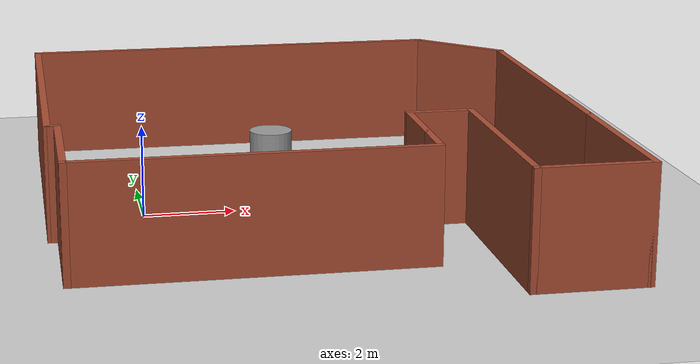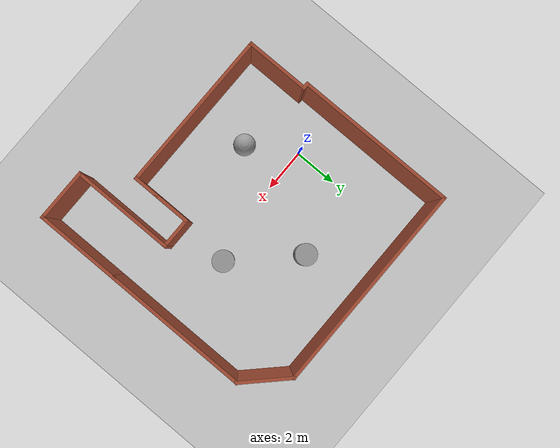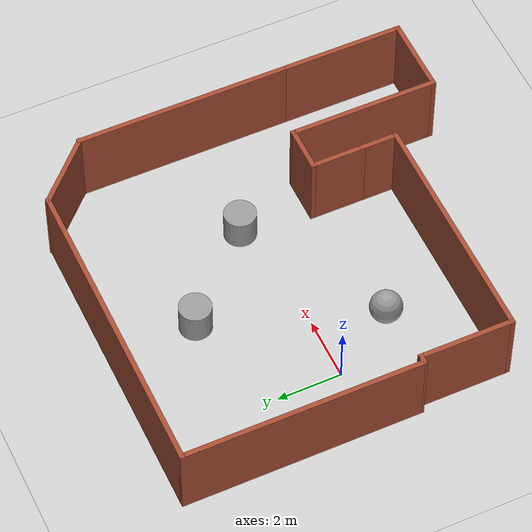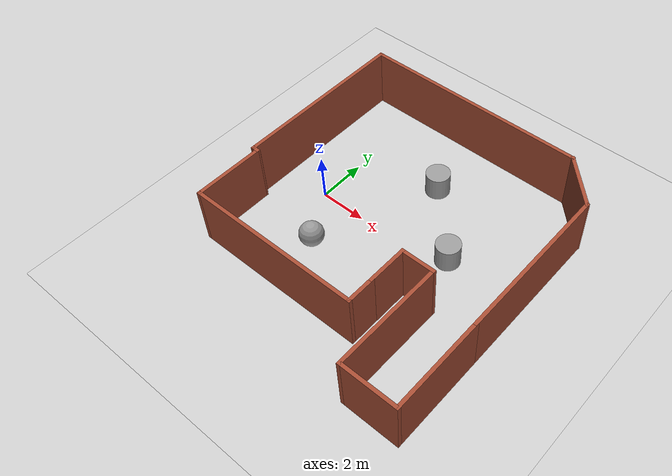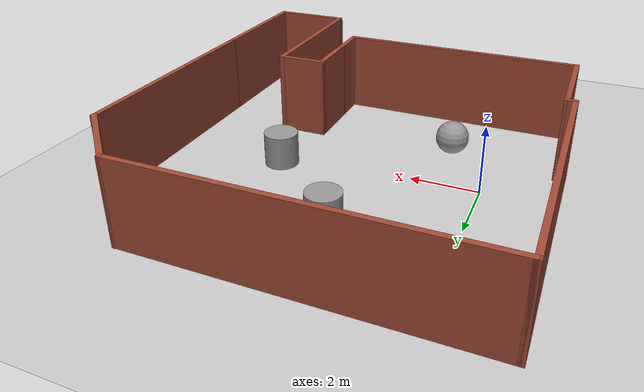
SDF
<sdf version="1.7">
 <world name="default">
  <light name="sun" type="directional">
   <pose>0 0 10 0 -0 0</pose>
   <diffuse>0.8 0.8 0.8 1</diffuse>
   <specular>0.2 0.2 0.2 1</specular>
   <attenuation>
    <range>1000</range>
    <constant>0.9</constant>
    <linear>0.01</linear>
    <quadratic>0.001</quadratic>
   </attenuation>
   <direction>-0.5 0.1 -0.9</direction>
   <spot><inner_angle>0</inner_angle><outer_angle>0</outer_angle><falloff>0</falloff></spot>
  </light>
  <model name="ground_plane">
   <static>1</static>
   <link name="link">
    <collision name="collision">
     <geometry><plane><normal>0 0 1</normal><size>100 100</size></plane></geometry>
     <surface>
      <contact><collide_bitmask>65535</collide_bitmask></contact>
      <friction><ode><mu>100</mu><mu2>50</mu2></ode></friction>
     </surface>
    </collision>
    <visual name="visual">
     <cast_shadows>0</cast_shadows>
     <geometry><plane><normal>0 0 1</normal><size>100 100</size></plane></geometry>
     <material>
      <script><uri>file://media/materials/scripts/gazebo.material</uri><name>Gazebo/Grey</name></script>
     </material>
    </visual>
   </link>
  </model>
  <gravity>0 0 -9.8</gravity>
  <magnetic_field>6e-06 2.3e-05 -4.2e-05</magnetic_field>
  <atmosphere type="adiabatic"/>
  <physics type="ode">
   <max_step_size>0.001</max_step_size>
   <real_time_factor>1</real_time_factor>
   <real_time_update_rate>1000</real_time_update_rate>
  </physics>
  <scene><ambient>0.4 0.4 0.4 1</ambient><background>0.7 0.7 0.7 1</background><shadows>1</shadows></scene>
  <audio><device>default</device></audio>
  <spherical_coordinates>
   <surface_model>EARTH_WGS84</surface_model>
   <latitude_deg>0</latitude_deg>
   <longitude_deg>0</longitude_deg>
   <elevation>0</elevation>
   <heading_deg>0</heading_deg>
  </spherical_coordinates>
  <model name="myspace">
   <pose>3.59437 -0.200318 0 0 -0 0</pose>
   <link name="Wall_0">
    <collision name="Wall_0_Collision">
     <geometry><box><size>7.5 0.15 2.5</size></box></geometry>
     <pose>0 0 1.25 0 -0 0</pose>
    </collision>
    <visual name="Wall_0_Visual">
     <pose>0 0 1.25 0 -0 0</pose>
     <geometry><box><size>7.5 0.15 2.5</size></box></geometry>
     <material>
      <script><uri>file://media/materials/scripts/gazebo.material</uri><name>Gazebo/Bricks</name></script>
      <ambient>1 1 1 1</ambient>
     </material>
     <meta><layer>0</layer></meta>
    </visual>
    <pose>-5.64437 2.36532 0 0 -0 1.5708</pose>
   </link>
   <link name="Wall_1">
    <collision name="Wall_1_Collision">
     <geometry><box><size>9.75 0.15 2.5</size></box></geometry>
     <pose>0 0 1.25 0 -0 0</pose>
    </collision>
    <visual name="Wall_1_Visual">
     <pose>0 0 1.25 0 -0 0</pose>
     <geometry><box><size>9.75 0.15 2.5</size></box></geometry>
     <material>
      <script><uri>file://media/materials/scripts/gazebo.material</uri><name>Gazebo/Bricks</name></script>
      <ambient>1 1 1 1</ambient>
     </material>
     <meta><layer>0</layer></meta>
    </visual>
    <pose>-0.844371 6.04032 0 0 -0 0</pose>
   </link>
   <link name="Wall_10">
    <collision name="Wall_10_Collision">
     <geometry><box><size>1.75 0.15 2.5</size></box></geometry>
     <pose>0 0 1.25 0 -0 0</pose>
    </collision>
    <visual name="Wall_10_Visual">
     <pose>0 0 1.25 0 -0 0</pose>
     <geometry><box><size>1.75 0.15 2.5</size></box></geometry>
     <material>
      <script><uri>file://media/materials/scripts/gazebo.material</uri><name>Gazebo/Bricks</name></script>
      <ambient>1 1 1 1</ambient>
     </material>
     <meta><layer>0</layer></meta>
    </visual>
    <pose>1.91733 -2.27138 0 0 -0 -1.5708</pose>
   </link>
   <link name="Wall_11">
    <collision name="Wall_11_Collision">
     <geometry><box><size>1.25 0.15 2.5</size></box></geometry>
     <pose>0 0 1.25 0 -0 0</pose>
    </collision>
    <visual name="Wall_11_Visual">
     <pose>0 0 1.25 0 -0 0</pose>
     <geometry><box><size>1.25 0.15 2.5</size></box></geometry>
     <material>
      <script><uri>file://media/materials/scripts/gazebo.material</uri><name>Gazebo/Bricks</name></script>
      <ambient>1 1 1 1</ambient>
     </material>
     <meta><layer>0</layer></meta>
    </visual>
    <pose>1.91733 -3.62138 0 0 -0 -1.5708</pose>
   </link>
   <link name="Wall_12">
    <collision name="Wall_12_Collision">
     <geometry><box><size>7.5 0.15 2.5</size></box></geometry>
     <pose>0 0 1.25 0 -0 0</pose>
    </collision>
    <visual name="Wall_12_Visual">
     <pose>0 0 1.25 0 -0 0</pose>
     <geometry><box><size>7.5 0.15 2.5</size></box></geometry>
     <material>
      <script><uri>file://media/materials/scripts/gazebo.material</uri><name>Gazebo/Bricks</name></script>
      <ambient>1 1 1 1</ambient>
     </material>
     <meta><layer>0</layer></meta>
    </visual>
    <pose>-1.75767 -4.17138 0 0 -0 3.14159</pose>
   </link>
   <link name="Wall_13">
    <collision name="Wall_13_Collision">
     <geometry><box><size>3 0.15 2.5</size></box></geometry>
     <pose>0 0 1.25 0 -0 0</pose>
    </collision>
    <visual name="Wall_13_Visual">
     <pose>0 0 1.25 0 -0 0</pose>
     <geometry><box><size>3 0.15 2.5</size></box></geometry>
     <material>
      <script><uri>file://media/materials/scripts/gazebo.material</uri><name>Gazebo/Bricks</name></script>
      <ambient>1 1 1 1</ambient>
     </material>
     <meta><layer>0</layer></meta>
    </visual>
    <pose>-5.43267 -2.74638 0 0 -0 1.5708</pose>
   </link>
   <link name="Wall_14">
    <collision name="Wall_14_Collision">
     <geometry><box><size>0.362024 0.15 2.5</size></box></geometry>
     <pose>0 0 1.25 0 -0 0</pose>
    </collision>
    <visual name="Wall_14_Visual">
     <pose>0 0 1.25 0 -0 0</pose>
     <geometry><box><size>0.362024 0.15 2.5</size></box></geometry>
     <material>
      <script><uri>file://media/materials/scripts/gazebo.material</uri><name>Gazebo/Bricks</name></script>
      <ambient>1 1 1 1</ambient>
     </material>
     <meta><layer>0</layer></meta>
    </visual>
    <pose>-5.53852 -1.31553 0 0 -0 3.08638</pose>
   </link>
   <link name="Wall_2">
    <collision name="Wall_2_Collision">
     <geometry><box><size>2.5 0.15 2.5</size></box></geometry>
     <pose>0 0 1.25 0 -0 0</pose>
    </collision>
    <visual name="Wall_2_Visual">
     <pose>0 0 1.25 0 -0 0</pose>
     <geometry><box><size>2.5 0.15 2.5</size></box></geometry>
     <material>
      <script><uri>file://media/materials/scripts/gazebo.material</uri><name>Gazebo/Bricks</name></script>
      <ambient>1 1 1 1</ambient>
     </material>
     <meta><layer>0</layer></meta>
    </visual>
    <pose>4.78648 5.20947 0 0 -0 -0.785398</pose>
   </link>
   <link name="Wall_3">
    <collision name="Wall_3_Collision">
     <geometry><box><size>6.75 0.15 2.5</size></box></geometry>
     <pose>0 0 1.25 0 -0 0</pose>
    </collision>
    <visual name="Wall_3_Visual">
     <pose>0 0 1.25 0 -0 0</pose>
     <geometry><box><size>6.75 0.15 2.5</size></box></geometry>
     <material>
      <script><uri>file://media/materials/scripts/gazebo.material</uri><name>Gazebo/Bricks</name></script>
      <ambient>1 1 1 1</ambient>
     </material>
     <meta><layer>0</layer></meta>
    </visual>
    <pose>5.61733 1.07862 0 0 -0 -1.5708</pose>
   </link>
   <link name="Wall_4">
    <collision name="Wall_4_Collision">
     <geometry><box><size>4 0.15 2.5</size></box></geometry>
     <pose>0 0 1.25 0 -0 0</pose>
    </collision>
    <visual name="Wall_4_Visual">
     <pose>0 0 1.25 0 -0 0</pose>
     <geometry><box><size>4 0.15 2.5</size></box></geometry>
     <material>
      <script><uri>file://media/materials/scripts/gazebo.material</uri><name>Gazebo/Bricks</name></script>
      <ambient>1 1 1 1</ambient>
     </material>
     <meta><layer>0</layer></meta>
    </visual>
    <pose>5.61733 -4.14638 0 0 -0 -1.5708</pose>
   </link>
   <link name="Wall_5">
    <collision name="Wall_5_Collision">
     <geometry><box><size>2.5 0.15 2.5</size></box></geometry>
     <pose>0 0 1.25 0 -0 0</pose>
    </collision>
    <visual name="Wall_5_Visual">
     <pose>0 0 1.25 0 -0 0</pose>
     <geometry><box><size>2.5 0.15 2.5</size></box></geometry>
     <material>
      <script><uri>file://media/materials/scripts/gazebo.material</uri><name>Gazebo/Bricks</name></script>
      <ambient>1 1 1 1</ambient>
     </material>
     <meta><layer>0</layer></meta>
    </visual>
    <pose>4.44233 -6.07138 0 0 -0 3.14159</pose>
   </link>
   <link name="Wall_6">
    <collision name="Wall_6_Collision">
     <geometry><box><size>4.75 0.15 2.5</size></box></geometry>
     <pose>0 0 1.25 0 -0 0</pose>
    </collision>
    <visual name="Wall_6_Visual">
     <pose>0 0 1.25 0 -0 0</pose>
     <geometry><box><size>4.75 0.15 2.5</size></box></geometry>
     <material>
      <script><uri>file://media/materials/scripts/gazebo.material</uri><name>Gazebo/Bricks</name></script>
      <ambient>1 1 1 1</ambient>
     </material>
     <meta><layer>0</layer></meta>
    </visual>
    <pose>3.26733 -3.77138 0 0 -0 1.5708</pose>
   </link>
   <link name="Wall_7">
    <collision name="Wall_7_Collision">
     <geometry><box><size>1.5 0.15 2.5</size></box></geometry>
     <pose>0 0 1.25 0 -0 0</pose>
    </collision>
    <visual name="Wall_7_Visual">
     <pose>0 0 1.25 0 -0 0</pose>
     <geometry><box><size>1.5 0.15 2.5</size></box></geometry>
     <material>
      <script><uri>file://media/materials/scripts/gazebo.material</uri><name>Gazebo/Bricks</name></script>
      <ambient>1 1 1 1</ambient>
     </material>
     <meta><layer>0</layer></meta>
    </visual>
    <pose>2.59233 -1.47138 0 0 -0 3.14159</pose>
   </link>
   <static>1</static>
  </model>
  <model name="unit_cylinder">
   <pose>3.30104 3.10629 0.499997 3e-06 4e-06 -0</pose>
   <link name="link">
    <inertial>
     <mass>1</mass>
     <inertia><ixx>0.145833</ixx><ixy>0</ixy><ixz>0</ixz><iyy>0.145833</iyy><iyz>0</iyz><izz>0.125</izz></inertia>
    </inertial>
    <collision name="collision">
     <geometry><cylinder><radius>0.5</radius><length>1</length></cylinder></geometry>
    </collision>
    <visual name="visual">
     <geometry><cylinder><radius>0.5</radius><length>1</length></cylinder></geometry>
     <material>
      <script><name>Gazebo/Grey</name><uri>file://media/materials/scripts/gazebo.material</uri></script>
     </material>
    </visual>
   </link>
  </model>
  <model name="unit_sphere">
   <pose>1.31664 -2.065 0.5 0 -0 0</pose>
   <link name="link">
    <inertial>
     <mass>1</mass>
     <inertia><ixx>0.1</ixx><ixy>0</ixy><ixz>0</ixz><iyy>0.1</iyy><iyz>0</iyz><izz>0.1</izz></inertia>
    </inertial>
    <collision name="collision"><geometry><sphere><radius>0.5</radius></sphere></geometry></collision>
    <visual name="visual">
     <geometry><sphere><radius>0.5</radius></sphere></geometry>
     <material>
      <script><name>Gazebo/Grey</name><uri>file://media/materials/scripts/gazebo.material</uri></script>
     </material>
    </visual>
   </link>
  </model>
  <model name="unit_cylinder_0">
   <pose>5.83474 0.53654 0.499997 3e-06 4e-06 -0</pose>
   <link name="link">
    <inertial>
     <mass>1</mass>
     <inertia><ixx>0.145833</ixx><ixy>0</ixy><ixz>0</ixz><iyy>0.145833</iyy><iyz>0</iyz><izz>0.125</izz></inertia>
    </inertial>
    <collision name="collision">
     <geometry><cylinder><radius>0.5</radius><length>1</length></cylinder></geometry>
    </collision>
    <visual name="visual">
     <geometry><cylinder><radius>0.5</radius><length>1</length></cylinder></geometry>
     <material>
      <script><name>Gazebo/Grey</name><uri>file://media/materials/scripts/gazebo.material</uri></script>
     </material>
    </visual>
   </link>
  </model>
 </world>
</sdf>
